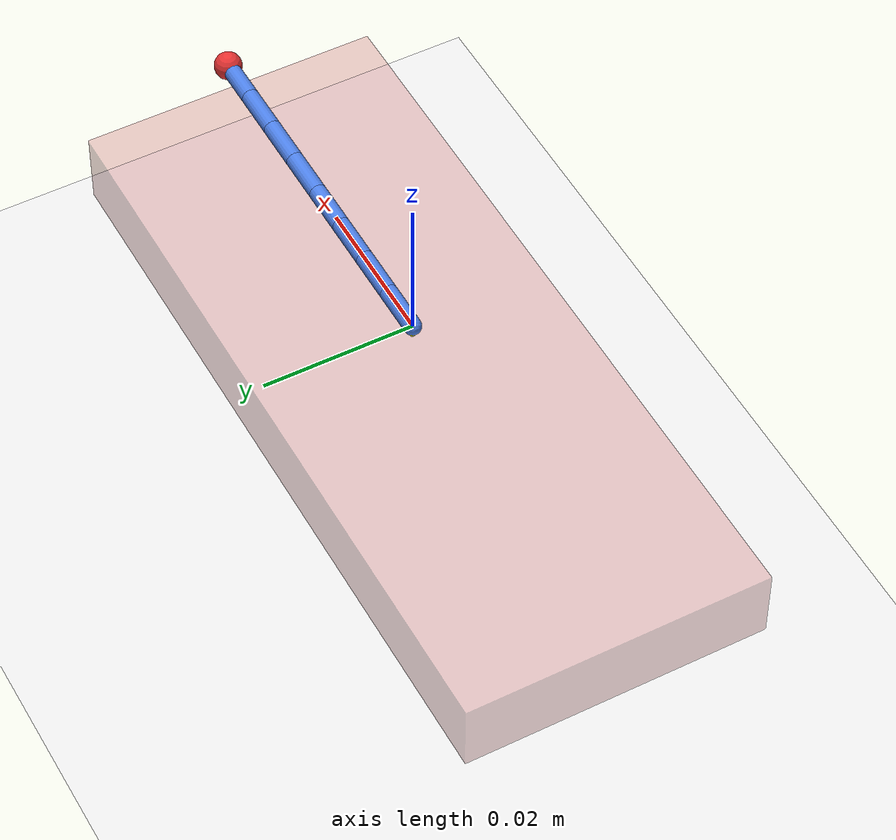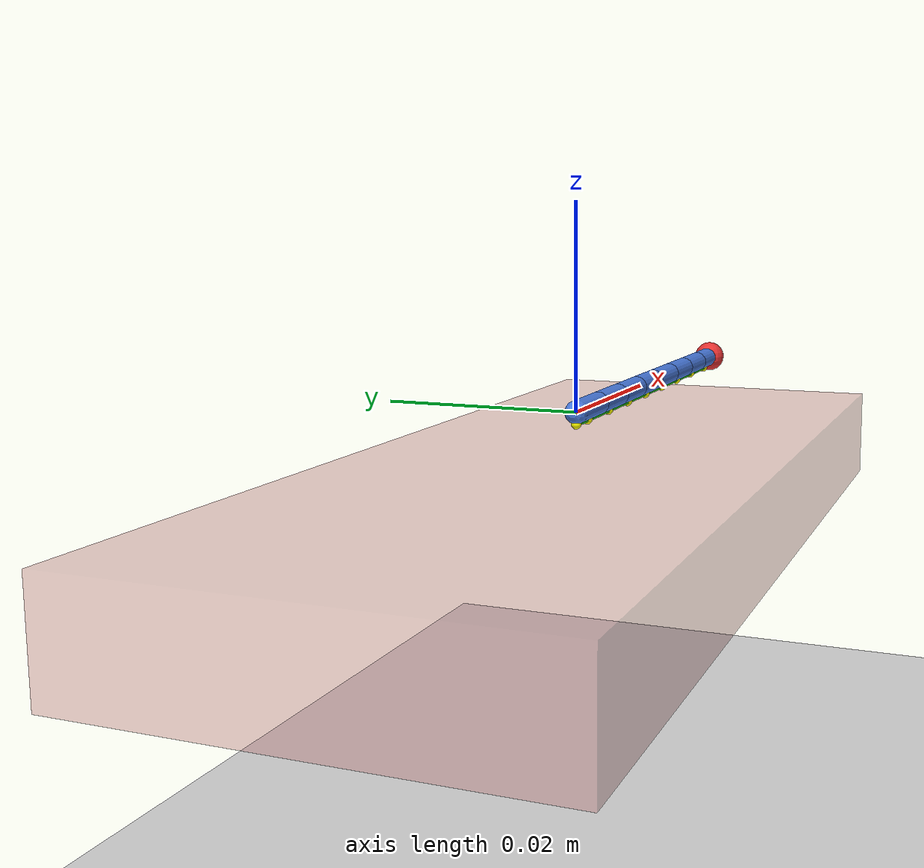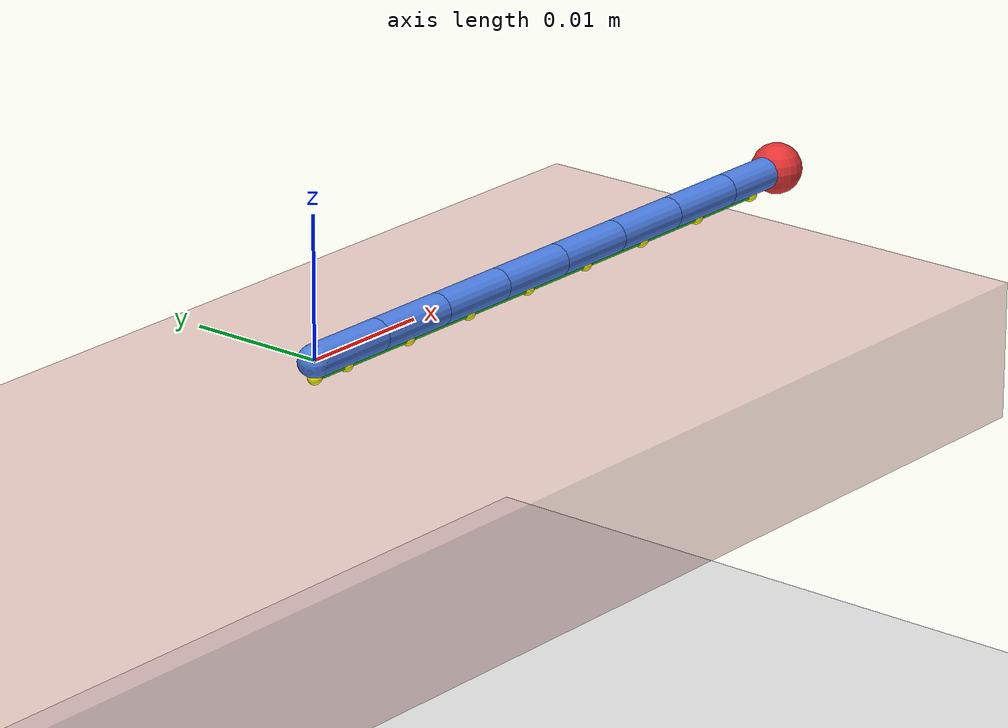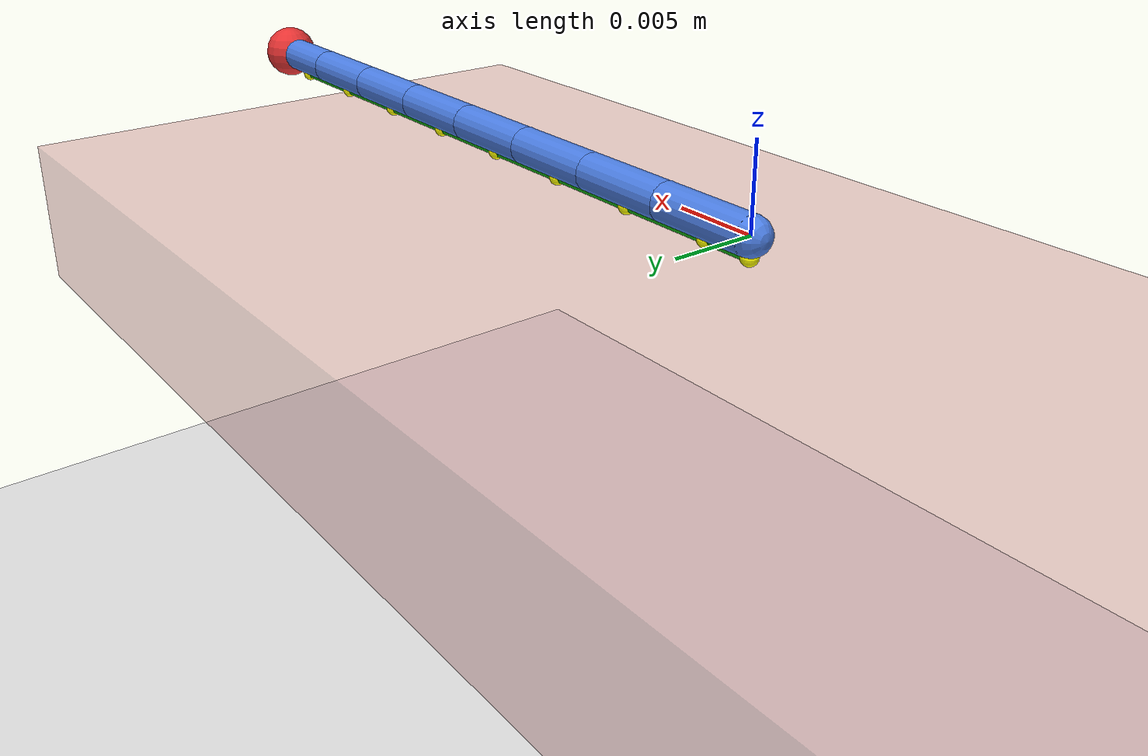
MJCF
<mujoco model="catheter_prb_spike">
  <compiler angle="radian" autolimits="true"/>
  <!-- dt=2e-5: the analytic Kelvin-Voigt tissue force is applied explicitly on a very
       light tip; a stiff k_t=5000 contact needs this step for explicit stability. -->
  <option timestep="2e-5" integrator="implicitfast" cone="elliptic"/>
  <default>
    <site rgba="1 1 0 1"/>
  </default>
  <worldbody>
    <geom name="floor" type="plane" pos="0 0 -0.05" size="1 1 0.01"
          contype="0" conaffinity="0" rgba="0.9 0.9 0.9 1"/>
    <site name="anchor" pos="0 0 -0.00115" size="0.0005"/>
    <!-- catheter base fixed to world; chain extends +x, bends in x-z plane -->
    <body name="link0" pos="0 0 0">
      <joint name="j0" type="hinge" axis="0 1 0" pos="0 0 0" stiffness="0.047999999999999994" damping="0.0002" armature="2e-5"/>
      <geom type="capsule" fromto="0 0 0 0.00625 0 0" size="0.00115" mass="2.5e-05" contype="0" conaffinity="0" rgba="0.3 0.5 0.9 1"/>
      <site name="t0" pos="0.003125 0 -0.00115" size="0.0005"/>
    <body name="link1" pos="0.00625 0 0">
      <joint name="j1" type="hinge" axis="0 1 0" pos="0 0 0" stiffness="0.047999999999999994" damping="0.0002" armature="2e-5"/>
      <geom type="capsule" fromto="0 0 0 0.00625 0 0" size="0.00115" mass="2.5e-05" contype="0" conaffinity="0" rgba="0.3 0.5 0.9 1"/>
      <site name="t1" pos="0.003125 0 -0.00115" size="0.0005"/>
    <body name="link2" pos="0.00625 0 0">
      <joint name="j2" type="hinge" axis="0 1 0" pos="0 0 0" stiffness="0.047999999999999994" damping="0.0002" armature="2e-5"/>
      <geom type="capsule" fromto="0 0 0 0.00625 0 0" size="0.00115" mass="2.5e-05" contype="0" conaffinity="0" rgba="0.3 0.5 0.9 1"/>
      <site name="t2" pos="0.003125 0 -0.00115" size="0.0005"/>
    <body name="link3" pos="0.00625 0 0">
      <joint name="j3" type="hinge" axis="0 1 0" pos="0 0 0" stiffness="0.047999999999999994" damping="0.0002" armature="2e-5"/>
      <geom type="capsule" fromto="0 0 0 0.00625 0 0" size="0.00115" mass="2.5e-05" contype="0" conaffinity="0" rgba="0.3 0.5 0.9 1"/>
      <site name="t3" pos="0.003125 0 -0.00115" size="0.0005"/>
    <body name="link4" pos="0.00625 0 0">
      <joint name="j4" type="hinge" axis="0 1 0" pos="0 0 0" stiffness="0.047999999999999994" damping="0.0002" armature="2e-5"/>
      <geom type="capsule" fromto="0 0 0 0.00625 0 0" size="0.00115" mass="2.5e-05" contype="0" conaffinity="0" rgba="0.3 0.5 0.9 1"/>
      <site name="t4" pos="0.003125 0 -0.00115" size="0.0005"/>
    <body name="link5" pos="0.00625 0 0">
      <joint name="j5" type="hinge" axis="0 1 0" pos="0 0 0" stiffness="0.047999999999999994" damping="0.0002" armature="2e-5"/>
      <geom type="capsule" fromto="0 0 0 0.00625 0 0" size="0.00115" mass="2.5e-05" contype="0" conaffinity="0" rgba="0.3 0.5 0.9 1"/>
      <site name="t5" pos="0.003125 0 -0.00115" size="0.0005"/>
    <body name="link6" pos="0.00625 0 0">
      <joint name="j6" type="hinge" axis="0 1 0" pos="0 0 0" stiffness="0.047999999999999994" damping="0.0002" armature="2e-5"/>
      <geom type="capsule" fromto="0 0 0 0.00625 0 0" size="0.00115" mass="2.5e-05" contype="0" conaffinity="0" rgba="0.3 0.5 0.9 1"/>
      <site name="t6" pos="0.003125 0 -0.00115" size="0.0005"/>
    <body name="link7" pos="0.00625 0 0">
      <joint name="j7" type="hinge" axis="0 1 0" pos="0 0 0" stiffness="0.047999999999999994" damping="0.0002" armature="2e-5"/>
      <geom type="capsule" fromto="0 0 0 0.00625 0 0" size="0.00115" mass="2.5e-05" contype="0" conaffinity="0" rgba="0.3 0.5 0.9 1"/>
      <site name="t7" pos="0.003125 0 -0.00115" size="0.0005"/>
      <geom name="tip" type="sphere" size="0.00184" pos="0.00625 0 0" mass="1.25e-05" contype="1" conaffinity="1" rgba="0.9 0.2 0.2 1"/>
      <site name="tip_site" pos="0.00625 0 0" size="0.001"/>
    </body>
    </body>
    </body>
    </body>
    </body>
    </body>
    </body>
    </body>
    <!-- tissue wall: box on z-slide for cardiac motion; Kelvin-Voigt via solref -->
    <body name="wall" pos="0 0 -0.004">
      <joint name="wall_z" type="slide" axis="0 0 1" damping="1e3"/>
      <geom name="wall_geom" type="box" size="0.05 0.02 0.005" pos="0 0 -0.005"
            contype="0" conaffinity="0" rgba="0.8 0.5 0.5 0.4"/>
    </body>
  </worldbody>
  <tendon>
    <spatial name="cath_tendon" width="0.0003" rgba="0.1 0.8 0.1 1"
             frictionloss="0.0">
      <site site="anchor"/>
      <site site="t0"/>
      <site site="t1"/>
      <site site="t2"/>
      <site site="t3"/>
      <site site="t4"/>
      <site site="t5"/>
      <site site="t6"/>
      <site site="t7"/>
    </spatial>
  </tendon>
  <actuator>
    <motor name="tendon_motor" tendon="cath_tendon" gear="1"
           ctrlrange="-8.0 0" ctrllimited="true"/>
    <position name="wall_drive" joint="wall_z" kp="2e4" ctrlrange="-0.06 0.01"/>
  </actuator>
  <sensor>
    <framepos name="tip_pos" objtype="site" objname="tip_site"/>
    <framelinvel name="tip_vel" objtype="site" objname="tip_site"/>
    <tendonpos name="tendon_len" tendon="cath_tendon"/>
  </sensor>
</mujoco>
